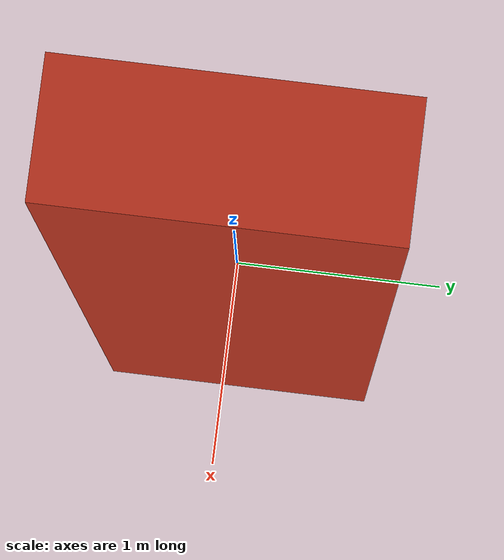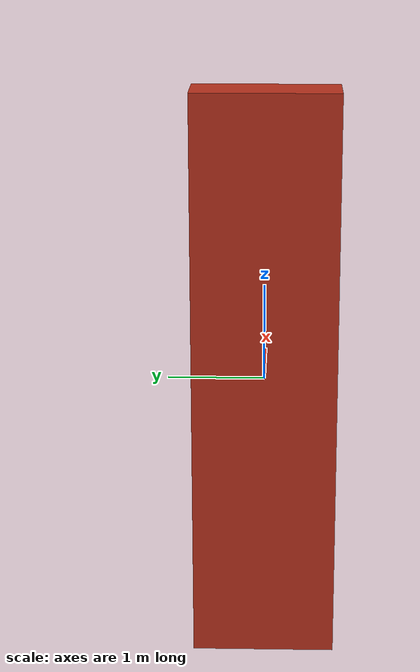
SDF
<?xml version="1.0"?>
<sdf version="1.6">
  <model name="ego_test_obstacle">
    <static>true</static>
    <link name="link">
      <collision name="collision">
        <geometry>
          <box>
            <size>0.6 1.5 6.0</size>
          </box>
        </geometry>
      </collision>
      <visual name="visual">
        <geometry>
          <box>
            <size>0.6 1.5 6.0</size>
          </box>
        </geometry>
        <material>
          <ambient>0.65 0.15 0.10 1</ambient>
          <diffuse>0.75 0.20 0.12 1</diffuse>
        </material>
      </visual>
    </link>
  </model>
</sdf>
